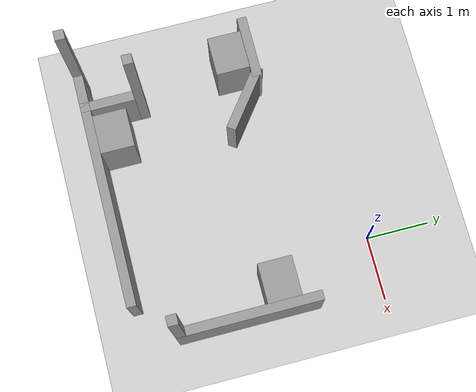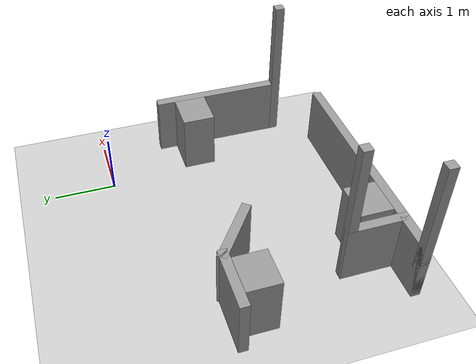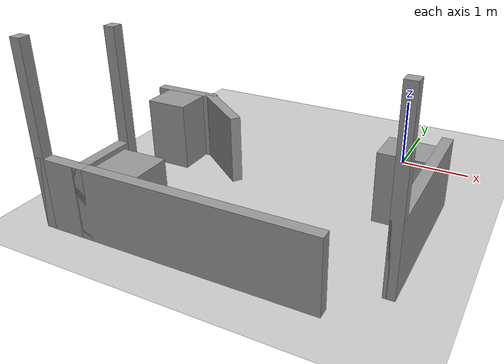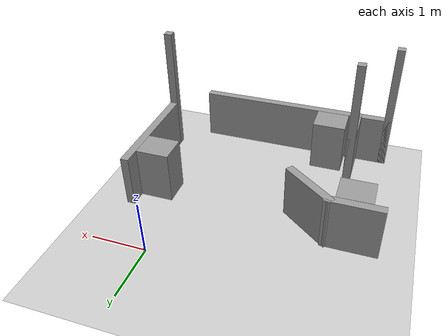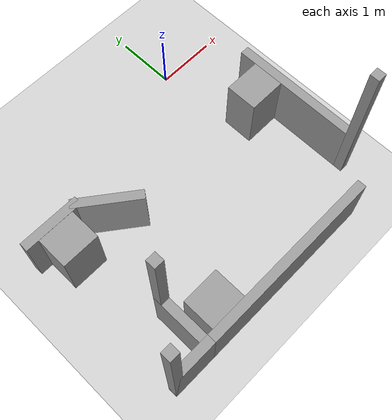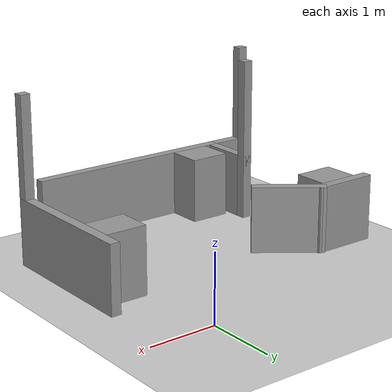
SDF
<sdf version="1.7">
 <world name="default">
  <light name="sun" type="directional">
   <pose>0 0 10 0 -0 0</pose>
   <diffuse>0.8 0.8 0.8 1</diffuse>
   <specular>0.2 0.2 0.2 1</specular>
   <attenuation>
    <range>1000</range>
    <constant>0.9</constant>
    <linear>0.01</linear>
    <quadratic>0.001</quadratic>
   </attenuation>
   <direction>-0.5 0.1 -0.9</direction>
   <spot><inner_angle>0</inner_angle><outer_angle>0</outer_angle><falloff>0</falloff></spot>
  </light>
  <model name="ground_plane">
   <static>1</static>
   <link name="link">
    <collision name="collision">
     <geometry><plane><normal>0 0 1</normal><size>100 100</size></plane></geometry>
     <surface>
      <contact><collide_bitmask>65535</collide_bitmask></contact>
      <friction><ode><mu>100</mu><mu2>50</mu2></ode></friction>
     </surface>
    </collision>
    <visual name="visual">
     <cast_shadows>0</cast_shadows>
     <geometry><plane><normal>0 0 1</normal><size>100 100</size></plane></geometry>
     <material>
      <script><uri>file://media/materials/scripts/gazebo.material</uri><name>Gazebo/Grey</name></script>
     </material>
    </visual>
   </link>
  </model>
  <gravity>0 0 -9.8</gravity>
  <magnetic_field>6e-06 2.3e-05 -4.2e-05</magnetic_field>
  <atmosphere type="adiabatic"/>
  <physics type="ode">
   <max_step_size>0.001</max_step_size>
   <real_time_factor>1</real_time_factor>
   <real_time_update_rate>1000</real_time_update_rate>
  </physics>
  <scene><ambient>0.4 0.4 0.4 1</ambient><background>0.7 0.7 0.7 1</background><shadows>1</shadows></scene>
  <spherical_coordinates>
   <surface_model>EARTH_WGS84</surface_model>
   <latitude_deg>0</latitude_deg>
   <longitude_deg>0</longitude_deg>
   <elevation>0</elevation>
   <heading_deg>0</heading_deg>
  </spherical_coordinates>
  <model name="teste">
   <pose>-1.4265 -1.9275 0 0 -0 0</pose>
   <link name="Wall_0">
    <collision name="Wall_0_Collision">
     <geometry><box><size>0.75 0.15 1</size></box></geometry>
     <pose>0 0 0.5 0 -0 0</pose>
    </collision>
    <visual name="Wall_0_Visual">
     <pose>0 0 0.5 0 -0 0</pose>
     <geometry><box><size>0.75 0.15 1</size></box></geometry>
     <material>
      <script><uri>file://media/materials/scripts/gazebo.material</uri><name>Gazebo/Grey</name></script>
      <ambient>1 1 1 1</ambient>
     </material>
     <meta><layer>0</layer></meta>
    </visual>
    <pose>-1.7835 -1.8525 0 0 -0 0</pose>
   </link>
   <link name="Wall_10">
    <collision name="Wall_10_Collision">
     <geometry><box><size>0.15 0.15 2.5</size></box></geometry>
     <pose>0 0 1.25 0 -0 0</pose>
    </collision>
    <visual name="Wall_10_Visual">
     <pose>0 0 1.25 0 -0 0</pose>
     <geometry><box><size>0.15 0.15 2.5</size></box></geometry>
     <material>
      <script><uri>file://media/materials/scripts/gazebo.material</uri><name>Gazebo/Grey</name></script>
      <ambient>1 1 1 1</ambient>
     </material>
     <meta><layer>0</layer></meta>
    </visual>
    <pose>2.2335 -1.2525 0 0 -0 0</pose>
   </link>
   <link name="Wall_18">
    <collision name="Wall_18_Collision">
     <geometry><box><size>0.15 0.15 2.5</size></box></geometry>
     <pose>0 0 1.25 0 -0 0</pose>
    </collision>
    <visual name="Wall_18_Visual">
     <pose>0 0 1.25 0 -0 0</pose>
     <geometry><box><size>0.15 0.15 2.5</size></box></geometry>
     <material>
      <script><uri>file://media/materials/scripts/gazebo.material</uri><name>Gazebo/Grey</name></script>
      <ambient>1 1 1 1</ambient>
     </material>
     <meta><layer>0</layer></meta>
    </visual>
    <pose>-2.0835 -1.8525 0 0 -0 0</pose>
   </link>
   <link name="Wall_25">
    <collision name="Wall_25_Collision">
     <geometry><box><size>1 0.15 1</size></box></geometry>
     <pose>0 0 0.5 0 -0 0</pose>
    </collision>
    <visual name="Wall_25_Visual">
     <pose>0 0 0.5 0 -0 0</pose>
     <geometry><box><size>1 0.15 1</size></box></geometry>
     <material>
      <script><uri>file://media/materials/scripts/gazebo.material</uri><name>Gazebo/Grey</name></script>
      <ambient>1 1 1 1</ambient>
     </material>
     <meta><layer>0</layer></meta>
    </visual>
    <pose>-1.8085 0.8475 0 0 -0 3.14159</pose>
   </link>
   <link name="Wall_27">
    <collision name="Wall_27_Collision">
     <geometry><box><size>1.07892 0.15 1</size></box></geometry>
     <pose>0 0 0.5 0 -0 0</pose>
    </collision>
    <visual name="Wall_27_Visual">
     <pose>0 0 0.5 0 -0 0</pose>
     <geometry><box><size>1.07892 0.15 1</size></box></geometry>
     <material>
      <script><uri>file://media/materials/scripts/gazebo.material</uri><name>Gazebo/Grey</name></script>
      <ambient>1 1 1 1</ambient>
     </material>
     <meta><layer>0</layer></meta>
    </visual>
    <pose>-1.014 0.566 0 0 -0 2.49056</pose>
   </link>
   <link name="Wall_3">
    <collision name="Wall_3_Collision">
     <geometry><box><size>1 0.15 1</size></box></geometry>
     <pose>0 0 0.5 0 -0 0</pose>
    </collision>
    <visual name="Wall_3_Visual">
     <pose>0 0 0.5 0 -0 0</pose>
     <geometry><box><size>1 0.15 1</size></box></geometry>
     <material>
      <script><uri>file://media/materials/scripts/gazebo.material</uri><name>Gazebo/Grey</name></script>
      <ambient>1 1 1 1</ambient>
     </material>
     <meta><layer>0</layer></meta>
    </visual>
    <pose>-1.4835 -1.4275 0 0 -0 1.5708</pose>
   </link>
   <link name="Wall_30">
    <collision name="Wall_30_Collision">
     <geometry><box><size>2.25 0.15 1</size></box></geometry>
     <pose>0 0 0.5 0 -0 0</pose>
    </collision>
    <visual name="Wall_30_Visual">
     <pose>0 0 0.5 0 -0 0</pose>
     <geometry><box><size>2.25 0.15 1</size></box></geometry>
     <material>
      <script><uri>file://media/materials/scripts/gazebo.material</uri><name>Gazebo/Grey</name></script>
      <ambient>1 1 1 1</ambient>
     </material>
     <meta><layer>0</layer></meta>
    </visual>
    <pose>2.2335 -0.2025 0 0 -0 1.5708</pose>
   </link>
   <link name="Wall_4">
    <collision name="Wall_4_Collision">
     <geometry><box><size>0.15 0.15 2.5</size></box></geometry>
     <pose>0 0 1.25 0 -0 0</pose>
    </collision>
    <visual name="Wall_4_Visual">
     <pose>0 0 1.25 0 -0 0</pose>
     <geometry><box><size>0.15 0.15 2.5</size></box></geometry>
     <material>
      <script><uri>file://media/materials/scripts/gazebo.material</uri><name>Gazebo/Grey</name></script>
      <ambient>1 1 1 1</ambient>
     </material>
     <meta><layer>0</layer></meta>
    </visual>
    <pose>-1.4835 -1.0025 0 0 -0 0</pose>
   </link>
   <link name="Wall_6">
    <collision name="Wall_6_Collision">
     <geometry><box><size>3.25 0.15 1</size></box></geometry>
     <pose>0 0 0.5 0 -0 0</pose>
    </collision>
    <visual name="Wall_6_Visual">
     <pose>0 0 0.5 0 -0 0</pose>
     <geometry><box><size>3.25 0.15 1</size></box></geometry>
     <material>
      <script><uri>file://media/materials/scripts/gazebo.material</uri><name>Gazebo/Grey</name></script>
      <ambient>1 1 1 1</ambient>
     </material>
     <meta><layer>0</layer></meta>
    </visual>
    <pose>0.0665 -1.8525 0 0 -0 0</pose>
   </link>
   <static>1</static>
  </model>
  <model name="unit_box_clone">
   <pose>-2.43297 -3.44019 0.5 0 -0 0</pose>
   <link name="link">
    <inertial>
     <mass>1</mass>
     <inertia>
      <ixx>0.166667</ixx>
      <ixy>0</ixy>
      <ixz>0</ixz>
      <iyy>0.166667</iyy>
      <iyz>0</iyz>
      <izz>0.166667</izz>
     </inertia>
    </inertial>
    <collision name="collision"><geometry><box><size>0.61676 0.529613 1</size></box></geometry></collision>
    <visual name="visual">
     <geometry><box><size>0.61676 0.529613 1</size></box></geometry>
     <material>
      <script><name>Gazebo/Grey</name><uri>file://media/materials/scripts/gazebo.material</uri></script>
     </material>
    </visual>
   </link>
  </model>
  <model name="unit_box_clone_clone">
   <pose>-3.21665 -1.42091 0.5 0 -0 9e-06</pose>
   <link name="link">
    <inertial>
     <mass>1</mass>
     <inertia>
      <ixx>0.166667</ixx>
      <ixy>0</ixy>
      <ixz>0</ixz>
      <iyy>0.166667</iyy>
      <iyz>0</iyz>
      <izz>0.166667</izz>
     </inertia>
    </inertial>
    <collision name="collision"><geometry><box><size>0.61676 0.529613 1</size></box></geometry></collision>
    <visual name="visual">
     <geometry><box><size>0.61676 0.529613 1</size></box></geometry>
     <material>
      <script><name>Gazebo/Grey</name><uri>file://media/materials/scripts/gazebo.material</uri></script>
     </material>
    </visual>
   </link>
  </model>
  <model name="unit_box_clone_clone_0">
   <pose>0.423617 -1.56902 0.5 0 -0 8e-06</pose>
   <link name="link">
    <inertial>
     <mass>1</mass>
     <inertia>
      <ixx>0.166667</ixx>
      <ixy>0</ixy>
      <ixz>0</ixz>
      <iyy>0.166667</iyy>
      <iyz>0</iyz>
      <izz>0.166667</izz>
     </inertia>
    </inertial>
    <collision name="collision"><geometry><box><size>0.61676 0.529613 1</size></box></geometry></collision>
    <visual name="visual">
     <geometry><box><size>0.61676 0.529613 1</size></box></geometry>
     <material>
      <script><name>Gazebo/Grey</name><uri>file://media/materials/scripts/gazebo.material</uri></script>
     </material>
    </visual>
   </link>
  </model>
 </world>
</sdf>
